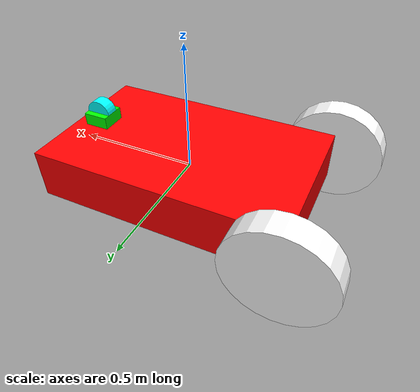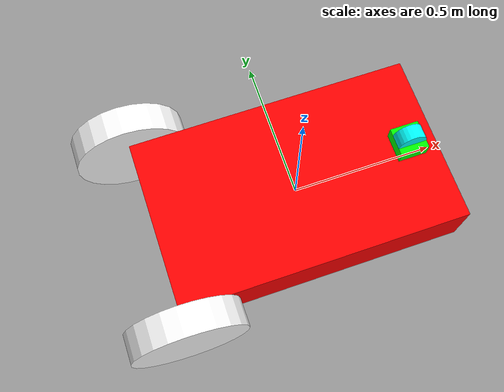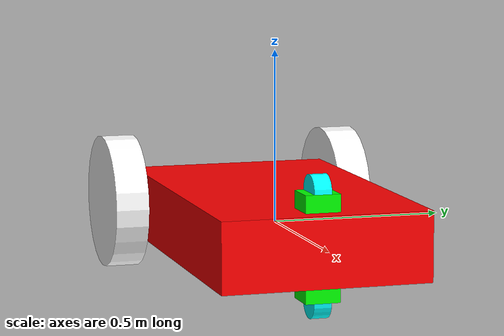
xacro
<?xml version="1.0"?>
<robot name="ddrive" xmlns:xacro="http://www.ros.org/wiki/xacro">

    <!-- Macro for the front wheels -->
    <xacro:macro name="front_wheel" params="name radius">
        <link name="${name}">
            <inertial>
                <mass value="0.1" />
                <inertia
                ixx="${(1/12)*0.1*(3*radius**2 + 0.25**2)}"
                ixy="0.0"
                ixz="0.0"
                iyy="${(1/12)*0.1*(3*radius**2 + 0.25**2)}"
                iyz="0.0"
                izz="${0.5*0.1*radius**2}"
                />
            </inertial>
            <visual>
                <origin xyz="0 0 0" />
                <geometry>
                    <cylinder length="0.05" radius="${radius}" />
                </geometry>
                <material name="">
                    <color rgba="0 1 1 1"/>
                </material>
            </visual>
            <collision>
                <origin xyz="0 0 0" />
                <geometry>
                    <cylinder length="0.05" radius="${radius}" />
                </geometry>
            </collision>
        </link>
    </xacro:macro>

    <!-- Font wheels of robot -->
    <xacro:front_wheel name="top_caster" radius="0.05"/>
    <xacro:front_wheel name="bot_caster" radius="0.05"/>

    <!-- The base of the robot -->
    <link name="base_link">
        <inertial>
            <mass value="1" />
            <inertia
            ixx="${(1/12)*1*(0.6**2 + 0.2**2)}"
            ixy="0.0"
            ixz="0.0"
            iyy="${(1/12)*1*(1.0**2) + 0.2**2}"
            iyz="0.0"
            izz="${(1/12)*1*(0.6**2 + 1.0**2)}"
            />
        </inertial>
        <visual>
            <origin xyz="0 0 0" />
            <geometry>
                <box size="1.0 0.6 0.2" />
            </geometry>
            <material name="">
                <color rgba="1 0 0 1" />
            </material>
        </visual>
        <collision>
            <origin xyz="0 0 0" />
            <geometry>
                <box size="1.0 0.6 0.2" />
            </geometry>
        </collision>
    </link>

    <!-- Back left wheel of robot -->
    <link name="blWheel">
        <inertial>
            <mass value="1" />
            <inertia
            ixx="${(1/12)*1*(3*0.2**2 + 0.05**2)}"
            ixy="0.0"
            ixz="0.0"
            iyy="${(1/12)*1*(3*0.2**2 + 0.05**2)}"
            iyz="0.0"
            izz="${0.5*1*0.2**2}"
            />
        </inertial>
        <visual>
            <origin xyz="0 0 0" />
            <geometry>
                <cylinder radius="0.2" length="0.1" />
            </geometry>
            <material name="">
                <color rgba="1 1 1 1" />
            </material>
        </visual>
        <collision>
            <origin xyz="0 0 0" />
            <geometry>
                <cylinder radius="0.2" length="0.1" />
            </geometry>
        </collision>
    </link>

    <!-- Back right wheel of robot -->
    <link name="brWheel">
        <inertial>
            <mass value="1" />
            <inertia
            ixx="${(1/12)*1*(3*0.2**2 + 0.05**2)}"
            ixy="0.0"
            ixz="0.0"
            iyy="${(1/12)*1*(3*0.2**2 + 0.05**2)}"
            iyz="0.0"
            izz="${0.5*1*0.2**2}"
            />
        </inertial>
        <visual>
            <origin xyz="0 0 0" />
            <geometry>
                <cylinder radius="0.2" length="0.1" />
            </geometry>
            <material name="">
                <color rgba="1 1 1 1" />
            </material>
        </visual>
        <collision>
            <origin xyz="0 0 0" />
            <geometry>
                <cylinder radius="0.2" length="0.1" />
            </geometry>
        </collision>
    </link>

    <!-- The block of the robot that the casters connect to -->
    <link name="block">
        <inertial>
            <mass value="0.2" />
            <inertia
            ixx="${(1/12)*0.2*(0.3**2 + 0.1**2)}"
            ixy="0.0"
            ixz="0.0"
            iyy="${(1/12)*0.2*(0.1**2 + 0.3**2)}"
            iyz="0.0"
            izz="${(1/12)*0.2*(0.1**2 + 0.1**2)}"
            />
        </inertial>
        <visual>
            <origin xyz="0 0 0" />
            <geometry>
                <box size="0.1 0.1 0.3" />
            </geometry>
            <material name="">
                <color rgba="0 1 0 1" />
            </material>
        </visual>
        <collision>
            <origin xyz="0 0 0" />
            <geometry>
                <box size="0.1 0.1 0.3" />
            </geometry>
        </collision>
    </link>

    <!-- Joint between base and back left wheel -->
    <joint name="base-blWheel" type="continuous">
        <origin xyz="${-1.0/2} 0.35 0" rpy="${radians(90.0)} 0.0 0.0" />
        <parent link="base_link"/>
        <child link="blWheel"/>
        <axis xyz="0.0 0.0 -1.0"/>
    </joint>

    <!-- Joint between base and back right wheel -->
    <joint name="base-brWheel" type="continuous">
        <origin xyz="${-1.0/2} -0.35 0" rpy="${radians(-90.0)} 0.0 0.0" />
        <parent link="base_link"/>
        <child link="brWheel"/>
        <axis xyz="0.0 0.0 1.0"/>
    </joint>

    <!-- Joint between block and base_link -->
    <joint name="base_link-block" type="fixed">
        <origin xyz="${2*1.0/5} 0.0 0.0" rpy="0.0 0.0 0.0" />
        <parent link="base_link"/>
        <child link="block"/>
        <axis xyz="0.0 0.0 1.0"/>
    </joint>

    <!-- Joint between block and front top wheel -->
    <joint name="block-top_caster" type="continuous">
        <origin xyz="0 0 0.15" rpy="${radians(-90.0)} 0.0 0.0" />
        <parent link="block"/>
        <child link="top_caster"/>
        <axis xyz="0.0 0.0 -1.0"/>
    </joint>

    <!-- Joint between block and front bottom wheel -->
    <joint name="block-bot_caster" type="continuous">
        <origin xyz="0 0 -0.15" rpy="${radians(-90.0)} 0.0 0.0" />
        <parent link="block"/>
        <child link="bot_caster"/>
        <axis xyz="0.0 0.0 1.0"/>
    </joint>
</robot>
